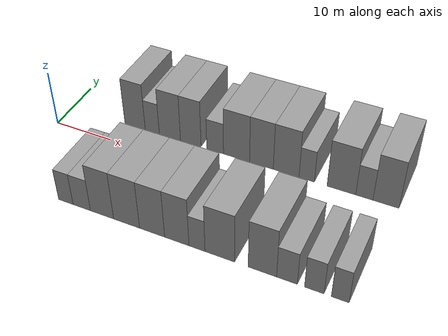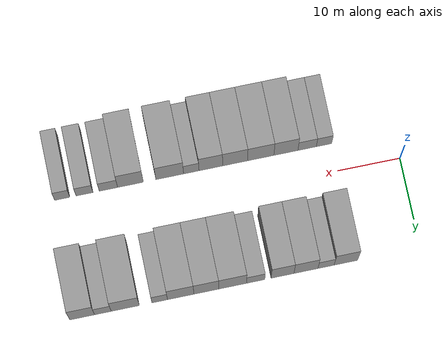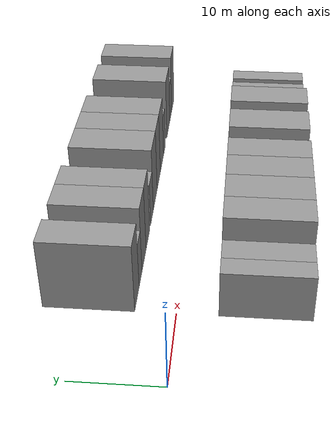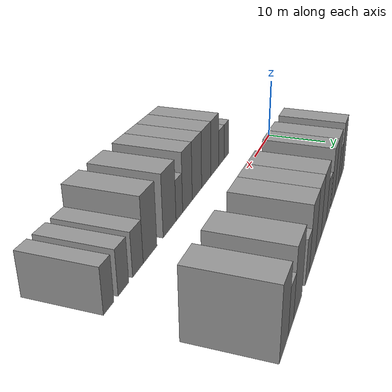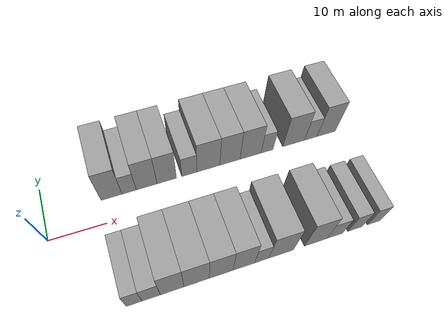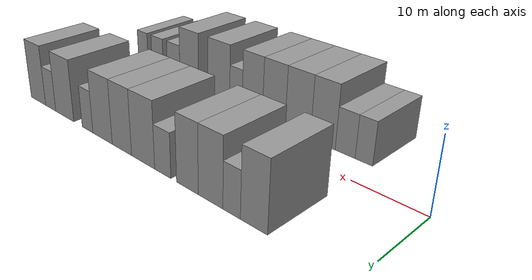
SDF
<sdf version="1.6">
 <world name="default">
  <model name="building_1">
   <static>1</static>
   <pose>11.8868 9.5000 0 0.000000 0.000000 1.570796</pose>
   <link name="link">
    <pose>0 0 4.50 0 0 0</pose>
    <collision name="collision"><geometry><box><size>10.0000 3.7736 9.0000</size></box></geometry></collision>
    <visual name="visual">
     <cast_shadows>0</cast_shadows>
     <geometry><box><size>10.0000 3.7736 9.0000</size></box></geometry>
     <material>
      <script>
       <uri>model://grey_wall/materials/scripts</uri>
       <uri>model://grey_wall/materials/textures</uri>
       <name>vrc/grey_wall</name>
      </script>
     </material>
    </visual>
   </link>
  </model>
  <model name="building_2">
   <static>1</static>
   <pose>15.0620 9.5000 0 0.000000 0.000000 1.570796</pose>
   <link name="link">
    <pose>0 0 3.00 0 0 0</pose>
    <collision name="collision"><geometry><box><size>10.0000 2.5769 6.0000</size></box></geometry></collision>
    <visual name="visual">
     <cast_shadows>0</cast_shadows>
     <geometry><box><size>10.0000 2.5769 6.0000</size></box></geometry>
     <material>
      <script>
       <uri>model://grey_wall/materials/scripts</uri>
       <uri>model://grey_wall/materials/textures</uri>
       <name>vrc/grey_wall</name>
      </script>
     </material>
    </visual>
   </link>
  </model>
  <model name="building_3">
   <static>1</static>
   <pose>18.2629 9.5000 0 0.000000 0.000000 1.570796</pose>
   <link name="link">
    <pose>0 0 4.50 0 0 0</pose>
    <collision name="collision"><geometry><box><size>10.0000 3.8249 9.0000</size></box></geometry></collision>
    <visual name="visual">
     <cast_shadows>0</cast_shadows>
     <geometry><box><size>10.0000 3.8249 9.0000</size></box></geometry>
     <material>
      <script>
       <uri>model://grey_wall/materials/scripts</uri>
       <uri>model://grey_wall/materials/textures</uri>
       <name>vrc/grey_wall</name>
      </script>
     </material>
    </visual>
   </link>
  </model>
  <model name="building_4">
   <static>1</static>
   <pose>21.9910 9.5000 0 0.000000 0.000000 1.570796</pose>
   <link name="link">
    <pose>0 0 4.50 0 0 0</pose>
    <collision name="collision"><geometry><box><size>10.0000 3.6313 9.0000</size></box></geometry></collision>
    <visual name="visual">
     <cast_shadows>0</cast_shadows>
     <geometry><box><size>10.0000 3.6313 9.0000</size></box></geometry>
     <material>
      <script>
       <uri>model://grey_wall/materials/scripts</uri>
       <uri>model://grey_wall/materials/textures</uri>
       <name>vrc/grey_wall</name>
      </script>
     </material>
    </visual>
   </link>
  </model>
  <model name="building_5">
   <static>1</static>
   <pose>26.2558 9.5000 0 0.000000 0.000000 1.570796</pose>
   <link name="link">
    <pose>0 0 3.00 0 0 0</pose>
    <collision name="collision"><geometry><box><size>10.0000 2.8984 6.0000</size></box></geometry></collision>
    <visual name="visual">
     <cast_shadows>0</cast_shadows>
     <geometry><box><size>10.0000 2.8984 6.0000</size></box></geometry>
     <material>
      <script>
       <uri>model://grey_wall/materials/scripts</uri>
       <uri>model://grey_wall/materials/textures</uri>
       <name>vrc/grey_wall</name>
      </script>
     </material>
    </visual>
   </link>
  </model>
  <model name="building_6">
   <static>1</static>
   <pose>29.9096 9.5000 0 0.000000 0.000000 1.570796</pose>
   <link name="link">
    <pose>0 0 4.50 0 0 0</pose>
    <collision name="collision"><geometry><box><size>10.0000 4.4091 9.0000</size></box></geometry></collision>
    <visual name="visual">
     <cast_shadows>0</cast_shadows>
     <geometry><box><size>10.0000 4.4091 9.0000</size></box></geometry>
     <material>
      <script>
       <uri>model://grey_wall/materials/scripts</uri>
       <uri>model://grey_wall/materials/textures</uri>
       <name>vrc/grey_wall</name>
      </script>
     </material>
    </visual>
   </link>
  </model>
  <model name="building_7">
   <static>1</static>
   <pose>34.0918 9.5000 0 0.000000 0.000000 1.570796</pose>
   <link name="link">
    <pose>0 0 4.50 0 0 0</pose>
    <collision name="collision"><geometry><box><size>10.0000 3.9553 9.0000</size></box></geometry></collision>
    <visual name="visual">
     <cast_shadows>0</cast_shadows>
     <geometry><box><size>10.0000 3.9553 9.0000</size></box></geometry>
     <material>
      <script>
       <uri>model://grey_wall/materials/scripts</uri>
       <uri>model://grey_wall/materials/textures</uri>
       <name>vrc/grey_wall</name>
      </script>
     </material>
    </visual>
   </link>
  </model>
  <model name="building_8">
   <static>1</static>
   <pose>38.1682 9.5000 0 0.000000 0.000000 1.570796</pose>
   <link name="link">
    <pose>0 0 4.50 0 0 0</pose>
    <collision name="collision"><geometry><box><size>10.0000 4.1977 9.0000</size></box></geometry></collision>
    <visual name="visual">
     <cast_shadows>0</cast_shadows>
     <geometry><box><size>10.0000 4.1977 9.0000</size></box></geometry>
     <material>
      <script>
       <uri>model://grey_wall/materials/scripts</uri>
       <uri>model://grey_wall/materials/textures</uri>
       <name>vrc/grey_wall</name>
      </script>
     </material>
    </visual>
   </link>
  </model>
  <model name="building_9">
   <static>1</static>
   <pose>41.4952 9.5000 0 0.000000 0.000000 1.570796</pose>
   <link name="link">
    <pose>0 0 3.00 0 0 0</pose>
    <collision name="collision"><geometry><box><size>10.0000 2.4562 6.0000</size></box></geometry></collision>
    <visual name="visual">
     <cast_shadows>0</cast_shadows>
     <geometry><box><size>10.0000 2.4562 6.0000</size></box></geometry>
     <material>
      <script>
       <uri>model://grey_wall/materials/scripts</uri>
       <uri>model://grey_wall/materials/textures</uri>
       <name>vrc/grey_wall</name>
      </script>
     </material>
    </visual>
   </link>
  </model>
  <model name="building_10">
   <static>1</static>
   <pose>46.9488 9.5000 0 0.000000 0.000000 1.570796</pose>
   <link name="link">
    <pose>0 0 4.50 0 0 0</pose>
    <collision name="collision"><geometry><box><size>10.0000 4.4510 9.0000</size></box></geometry></collision>
    <visual name="visual">
     <cast_shadows>0</cast_shadows>
     <geometry><box><size>10.0000 4.4510 9.0000</size></box></geometry>
     <material>
      <script>
       <uri>model://grey_wall/materials/scripts</uri>
       <uri>model://grey_wall/materials/textures</uri>
       <name>vrc/grey_wall</name>
      </script>
     </material>
    </visual>
   </link>
  </model>
  <model name="building_11">
   <static>1</static>
   <pose>50.4869 9.5000 0 0.000000 0.000000 1.570796</pose>
   <link name="link">
    <pose>0 0 3.00 0 0 0</pose>
    <collision name="collision"><geometry><box><size>10.0000 2.6252 6.0000</size></box></geometry></collision>
    <visual name="visual">
     <cast_shadows>0</cast_shadows>
     <geometry><box><size>10.0000 2.6252 6.0000</size></box></geometry>
     <material>
      <script>
       <uri>model://grey_wall/materials/scripts</uri>
       <uri>model://grey_wall/materials/textures</uri>
       <name>vrc/grey_wall</name>
      </script>
     </material>
    </visual>
   </link>
  </model>
  <model name="building_12">
   <static>1</static>
   <pose>53.7622 9.5000 0 0.000000 0.000000 1.570796</pose>
   <link name="link">
    <pose>0 0 4.50 0 0 0</pose>
    <collision name="collision"><geometry><box><size>10.0000 3.9254 9.0000</size></box></geometry></collision>
    <visual name="visual">
     <cast_shadows>0</cast_shadows>
     <geometry><box><size>10.0000 3.9254 9.0000</size></box></geometry>
     <material>
      <script>
       <uri>model://grey_wall/materials/scripts</uri>
       <uri>model://grey_wall/materials/textures</uri>
       <name>vrc/grey_wall</name>
      </script>
     </material>
    </visual>
   </link>
  </model>
  <model name="building_48">
   <static>1</static>
   <pose>11.2452 -9.5000 0 0.000000 0.000000 1.570796</pose>
   <link name="link">
    <pose>0 0 3.00 0 0 0</pose>
    <collision name="collision"><geometry><box><size>10.0000 2.4903 6.0000</size></box></geometry></collision>
    <visual name="visual">
     <cast_shadows>0</cast_shadows>
     <geometry><box><size>10.0000 2.4903 6.0000</size></box></geometry>
     <material>
      <script>
       <uri>model://grey_wall/materials/scripts</uri>
       <uri>model://grey_wall/materials/textures</uri>
       <name>vrc/grey_wall</name>
      </script>
     </material>
    </visual>
   </link>
  </model>
  <model name="building_49">
   <static>1</static>
   <pose>13.9684 -9.5000 0 0.000000 0.000000 1.570796</pose>
   <link name="link">
    <pose>0 0 3.00 0 0 0</pose>
    <collision name="collision"><geometry><box><size>10.0000 2.9562 6.0000</size></box></geometry></collision>
    <visual name="visual">
     <cast_shadows>0</cast_shadows>
     <geometry><box><size>10.0000 2.9562 6.0000</size></box></geometry>
     <material>
      <script>
       <uri>model://grey_wall/materials/scripts</uri>
       <uri>model://grey_wall/materials/textures</uri>
       <name>vrc/grey_wall</name>
      </script>
     </material>
    </visual>
   </link>
  </model>
  <model name="building_50">
   <static>1</static>
   <pose>17.3825 -9.5000 0 0.000000 0.000000 1.570796</pose>
   <link name="link">
    <pose>0 0 4.50 0 0 0</pose>
    <collision name="collision"><geometry><box><size>10.0000 3.8720 9.0000</size></box></geometry></collision>
    <visual name="visual">
     <cast_shadows>0</cast_shadows>
     <geometry><box><size>10.0000 3.8720 9.0000</size></box></geometry>
     <material>
      <script>
       <uri>model://grey_wall/materials/scripts</uri>
       <uri>model://grey_wall/materials/textures</uri>
       <name>vrc/grey_wall</name>
      </script>
     </material>
    </visual>
   </link>
  </model>
  <model name="building_51">
   <static>1</static>
   <pose>21.4363 -9.5000 0 0.000000 0.000000 1.570796</pose>
   <link name="link">
    <pose>0 0 4.50 0 0 0</pose>
    <collision name="collision"><geometry><box><size>10.0000 4.2356 9.0000</size></box></geometry></collision>
    <visual name="visual">
     <cast_shadows>0</cast_shadows>
     <geometry><box><size>10.0000 4.2356 9.0000</size></box></geometry>
     <material>
      <script>
       <uri>model://grey_wall/materials/scripts</uri>
       <uri>model://grey_wall/materials/textures</uri>
       <name>vrc/grey_wall</name>
      </script>
     </material>
    </visual>
   </link>
  </model>
  <model name="building_52">
   <static>1</static>
   <pose>25.5571 -9.5000 0 0.000000 0.000000 1.570796</pose>
   <link name="link">
    <pose>0 0 4.50 0 0 0</pose>
    <collision name="collision"><geometry><box><size>10.0000 4.0060 9.0000</size></box></geometry></collision>
    <visual name="visual">
     <cast_shadows>0</cast_shadows>
     <geometry><box><size>10.0000 4.0060 9.0000</size></box></geometry>
     <material>
      <script>
       <uri>model://grey_wall/materials/scripts</uri>
       <uri>model://grey_wall/materials/textures</uri>
       <name>vrc/grey_wall</name>
      </script>
     </material>
    </visual>
   </link>
  </model>
  <model name="building_53">
   <static>1</static>
   <pose>29.4530 -9.5000 0 0.000000 0.000000 1.570796</pose>
   <link name="link">
    <pose>0 0 4.50 0 0 0</pose>
    <collision name="collision"><geometry><box><size>10.0000 3.7857 9.0000</size></box></geometry></collision>
    <visual name="visual">
     <cast_shadows>0</cast_shadows>
     <geometry><box><size>10.0000 3.7857 9.0000</size></box></geometry>
     <material>
      <script>
       <uri>model://grey_wall/materials/scripts</uri>
       <uri>model://grey_wall/materials/textures</uri>
       <name>vrc/grey_wall</name>
      </script>
     </material>
    </visual>
   </link>
  </model>
  <model name="building_54">
   <static>1</static>
   <pose>32.5787 -9.5000 0 0.000000 0.000000 1.570796</pose>
   <link name="link">
    <pose>0 0 3.00 0 0 0</pose>
    <collision name="collision"><geometry><box><size>10.0000 2.4656 6.0000</size></box></geometry></collision>
    <visual name="visual">
     <cast_shadows>0</cast_shadows>
     <geometry><box><size>10.0000 2.4656 6.0000</size></box></geometry>
     <material>
      <script>
       <uri>model://grey_wall/materials/scripts</uri>
       <uri>model://grey_wall/materials/textures</uri>
       <name>vrc/grey_wall</name>
      </script>
     </material>
    </visual>
   </link>
  </model>
  <model name="building_55">
   <static>1</static>
   <pose>36.0346 -9.5000 0 0.000000 0.000000 1.570796</pose>
   <link name="link">
    <pose>0 0 4.50 0 0 0</pose>
    <collision name="collision"><geometry><box><size>10.0000 4.4462 9.0000</size></box></geometry></collision>
    <visual name="visual">
     <cast_shadows>0</cast_shadows>
     <geometry><box><size>10.0000 4.4462 9.0000</size></box></geometry>
     <material>
      <script>
       <uri>model://grey_wall/materials/scripts</uri>
       <uri>model://grey_wall/materials/textures</uri>
       <name>vrc/grey_wall</name>
      </script>
     </material>
    </visual>
   </link>
  </model>
  <model name="building_56">
   <static>1</static>
   <pose>42.3177 -9.5000 0 0.000000 0.000000 1.570796</pose>
   <link name="link">
    <pose>0 0 4.50 0 0 0</pose>
    <collision name="collision"><geometry><box><size>10.0000 4.1200 9.0000</size></box></geometry></collision>
    <visual name="visual">
     <cast_shadows>0</cast_shadows>
     <geometry><box><size>10.0000 4.1200 9.0000</size></box></geometry>
     <material>
      <script>
       <uri>model://grey_wall/materials/scripts</uri>
       <uri>model://grey_wall/materials/textures</uri>
       <name>vrc/grey_wall</name>
      </script>
     </material>
    </visual>
   </link>
  </model>
  <model name="building_57">
   <static>1</static>
   <pose>45.8467 -9.5000 0 0.000000 0.000000 1.570796</pose>
   <link name="link">
    <pose>0 0 3.00 0 0 0</pose>
    <collision name="collision"><geometry><box><size>10.0000 2.9378 6.0000</size></box></geometry></collision>
    <visual name="visual">
     <cast_shadows>0</cast_shadows>
     <geometry><box><size>10.0000 2.9378 6.0000</size></box></geometry>
     <material>
      <script>
       <uri>model://grey_wall/materials/scripts</uri>
       <uri>model://grey_wall/materials/textures</uri>
       <name>vrc/grey_wall</name>
      </script>
     </material>
    </visual>
   </link>
  </model>
  <model name="building_58">
   <static>1</static>
   <pose>49.6686 -9.5000 0 0.000000 0.000000 1.570796</pose>
   <link name="link">
    <pose>0 0 3.00 0 0 0</pose>
    <collision name="collision"><geometry><box><size>10.0000 2.7061 6.0000</size></box></geometry></collision>
    <visual name="visual">
     <cast_shadows>0</cast_shadows>
     <geometry><box><size>10.0000 2.7061 6.0000</size></box></geometry>
     <material>
      <script>
       <uri>model://grey_wall/materials/scripts</uri>
       <uri>model://grey_wall/materials/textures</uri>
       <name>vrc/grey_wall</name>
      </script>
     </material>
    </visual>
   </link>
  </model>
  <model name="building_59">
   <static>1</static>
   <pose>53.2299 -9.5000 0 0.000000 0.000000 1.570796</pose>
   <link name="link">
    <pose>0 0 3.00 0 0 0</pose>
    <collision name="collision"><geometry><box><size>10.0000 2.4163 6.0000</size></box></geometry></collision>
    <visual name="visual">
     <cast_shadows>0</cast_shadows>
     <geometry><box><size>10.0000 2.4163 6.0000</size></box></geometry>
     <material>
      <script>
       <uri>model://grey_wall/materials/scripts</uri>
       <uri>model://grey_wall/materials/textures</uri>
       <name>vrc/grey_wall</name>
      </script>
     </material>
    </visual>
   </link>
  </model>
 </world>
</sdf>
